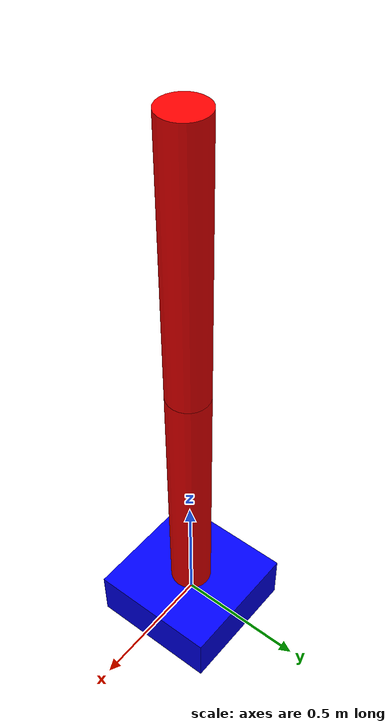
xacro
<?xml version="1.0"?>
<robot name="my_robot" xmlns:xacro="http://www.ros.org/wiki/xacro">
    <xacro:property name="base_size" value="0.5"/>
    <xacro:property name="base_height" value="0.2"/>
    <xacro:property name="arm_length" value="1.0"/>
    <xacro:property name="arm_radius" value="0.08"/>

<xacro:macro name="box_link" params="link_name size height">
    <link name="${link_name}">
        <visual>
            <geometry>
                <box size="${size} ${size} ${height}"/>
            </geometry>
            <material name="blue">
                <color rgba="0 0 1 1"/>
            </material>
        </visual>
    </link>
</xacro:macro>

<xacro:macro name="cylinder_link" params="link_name length radius">
    <link name="${link_name}">
        <visual>
            <origin xyz="0 0 ${length / 2}" rpy="0 0 0"/>
            <geometry>
                <cylinder radius="${radius}" length="${length}"/>
            </geometry>
            <material name="red">
                <color rgba="1 0 0 1"/>
            </material>
        </visual>

    </link>

</xacro:macro>

<xacro:box_link
    link_name="base_link"
    size="${base_size}"
    height="${base_height}"/>

<xacro:cylinder_link
    link_name="upper_link"
    length="${arm_length}"
    radius="${arm_radius}"/>

<xacro:cylinder_link
    link_name="forearm_link"
    length="${arm_length}"
    radius="${arm_radius}"/>

    <joint name="base_to_upper" type="revolute">
        <parent link="base_link"/>
        <child link="upper_link"/>
        <origin xyz="0 0 ${base_height / 2}" rpy="0 0 0"/>
        <axis xyz="0 0 1"/>
        <limit lower="-1.57" upper="1.57" effort="10" velocity="1.0"/>
    </joint>

    <joint name="upper_to_forearm" type="revolute">
        <parent link="upper_link"/>
        <child link="forearm_link"/>
        <origin xyz="0 0 ${arm_length}" rpy="0 0 0"/>
        <axis xyz="0 1 0"/>
        <limit lower="-1.57" upper="1.57" effort="10" velocity="1.0"/>
    </joint>
</robot>
